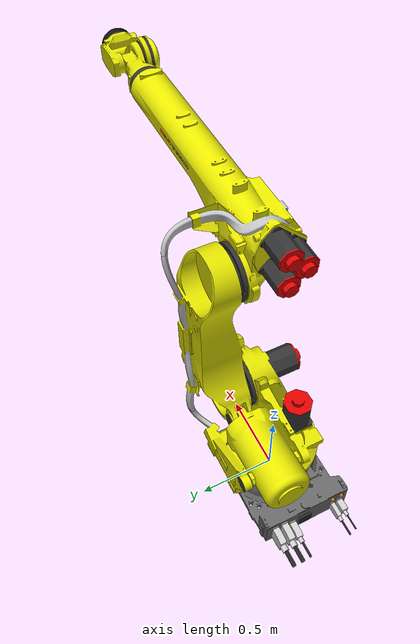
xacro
<?xml version="1.0" ?>
<robot name="r2000ic_210l" xmlns:xacro="http://wiki.ros.org/xacro">
  <xacro:include
    filename="$(find fanuc_r2000_description)/urdf/r2000ic_210l_urdf_macro.xacro"
  />

  <link name="world" />
  <link name="ee_link" />
  <xacro:r2000ic_210l parent="world" child="ee_link">
    <origin xyz="0 0 0" rpy="0 0 0" />
  </xacro:r2000ic_210l>
</robot>

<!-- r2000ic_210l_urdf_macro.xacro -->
<!--
SPDX-FileCopyrightText: 2026, FANUC America Corporation
SPDX-FileCopyrightText: 2026, FANUC CORPORATION
SPDX-License-Identifier: Apache-2.0
-->
<!-- URDF for R-2000/210F-31C(R-2000iC/210L) -->
<robot xmlns:xacro="http://wiki.ros.org/xacro">
  <xacro:macro
    name="r2000ic_210l"
    params="prefix=''
            parent
            *origin
            child"
  >

    <xacro:property name="j1_lower_limit" value="${radians(-185)}" />
    <xacro:property name="j2_lower_limit" value="${radians(-60)}" />
    <xacro:property name="j3_lower_limit" value="${radians(-79)}" />
    <xacro:property name="j4_lower_limit" value="${radians(-360)}" />
    <xacro:property name="j5_lower_limit" value="${radians(-125)}" />
    <xacro:property name="j6_lower_limit" value="${radians(-360)}" />

    <xacro:property name="j1_upper_limit" value="${radians(185)}" />
    <xacro:property name="j2_upper_limit" value="${radians(76)}" />
    <xacro:property name="j3_upper_limit" value="${radians(180)}" />
    <xacro:property name="j4_upper_limit" value="${radians(360)}" />
    <xacro:property name="j5_upper_limit" value="${radians(125)}" />
    <xacro:property name="j6_upper_limit" value="${radians(360)}" />

    <xacro:property name="j1_effort_limit" value="20000" />
    <xacro:property name="j2_effort_limit" value="30000" />
    <xacro:property name="j3_effort_limit" value="30000" />
    <xacro:property name="j4_effort_limit" value="6000" />
    <xacro:property name="j5_effort_limit" value="6000" />
    <xacro:property name="j6_effort_limit" value="3000" />

    <xacro:property name="j1_velocity_limit" value="${radians(105)}" />
    <xacro:property name="j2_velocity_limit" value="${radians(85)}" />
    <xacro:property name="j3_velocity_limit" value="${radians(85)}" />
    <xacro:property name="j4_velocity_limit" value="${radians(120)}" />
    <xacro:property name="j5_velocity_limit" value="${radians(120)}" />
    <xacro:property name="j6_velocity_limit" value="${radians(200)}" />

    <!-- links -->
    <link name="${prefix}base_link">
      <visual>
        <origin xyz="0 0 0" rpy="0 0 0" />
        <geometry>
          <mesh
            filename="package://fanuc_r2000_description/meshes/r2000ic_210l/visual/base.dae"
          />
        </geometry>
      </visual>
      <collision>
        <origin xyz="0 0 0" rpy="0 0 0" />
        <geometry>
          <mesh
            filename="package://fanuc_r2000_description/meshes/r2000ic_210l/collision/base.stl"
          />
        </geometry>
      </collision>
      <inertial>
        <mass value=" 219" />
        <origin xyz="-.137 -.00069  .142" />
        <inertia
          ixx=" 7.52"
          ixy=" .201"
          ixz="-.32"
          iyy=" 15.7"
          iyz=" .0156"
          izz=" 19.8"
        />
      </inertial>
    </link>

    <link name="${prefix}J1_link">
      <visual>
        <origin xyz="0 0 0" rpy="0 0 0" />
        <geometry>
          <mesh
            filename="package://fanuc_r2000_description/meshes/r2000ic_210l/visual/j1.dae"
          />
        </geometry>
      </visual>
      <collision>
        <origin xyz="0 0 0" rpy="0 0 0" />
        <geometry>
          <mesh
            filename="package://fanuc_r2000_description/meshes/r2000ic_210l/collision/j1.stl"
          />
        </geometry>
      </collision>
      <inertial>
        <mass value=" 401" />
        <origin xyz=" .0199  .064 -.114" />
        <inertia
          ixx=" 22.2"
          ixy=" 4.04"
          ixz="-.72"
          iyy=" 31.7"
          iyz="-.901"
          izz=" 36.3"
        />
      </inertial>
    </link>

    <link name="${prefix}J2_link">
      <visual>
        <origin xyz="0 0 0" rpy="0 0 0" />
        <geometry>
          <mesh
            filename="package://fanuc_r2000_description/meshes/r2000ic_210l/visual/j2.dae"
          />
        </geometry>
      </visual>
      <collision>
        <origin xyz="0 0 0" rpy="0 0 0" />
        <geometry>
          <mesh
            filename="package://fanuc_r2000_description/meshes/r2000ic_210l/collision/j2.stl"
          />
        </geometry>
      </collision>
      <inertial>
        <mass value=" 270" />
        <origin xyz=" .00363  .259  .488" />
        <inertia
          ixx=" 41.2"
          ixy="-.0643"
          ixz="-1.15"
          iyy=" 42"
          iyz="-2.66"
          izz=" 6.39"
        />
      </inertial>
    </link>

    <link name="${prefix}J3_link">
      <visual>
        <origin xyz="0 0 0" rpy="0 0 0" />
        <geometry>
          <mesh
            filename="package://fanuc_r2000_description/meshes/r2000ic_210l/visual/j3.dae"
          />
        </geometry>
      </visual>
      <collision>
        <origin xyz="0 0 0" rpy="0 0 0" />
        <geometry>
          <mesh
            filename="package://fanuc_r2000_description/meshes/r2000ic_210l/collision/j3.stl"
          />
        </geometry>
      </collision>
      <inertial>
        <mass value=" 421" />
        <origin xyz=" .407  .0598  .156" />
        <inertia
          ixx=" 14.4"
          ixy=" 1.69"
          ixz="-4.56"
          iyy=" 83.6"
          iyz="-.152"
          izz=" 84.9"
        />
      </inertial>
    </link>

    <link name="${prefix}J4_link">
      <visual>
        <origin xyz="0 0 0" rpy="0 0 0" />
        <geometry>
          <mesh
            filename="package://fanuc_r2000_description/meshes/r2000ic_210l/visual/j4.dae"
          />
        </geometry>
      </visual>
      <collision>
        <origin xyz="0 0 0" rpy="0 0 0" />
        <geometry>
          <mesh
            filename="package://fanuc_r2000_description/meshes/r2000ic_210l/collision/j4.stl"
          />
        </geometry>
      </collision>
      <inertial>
        <mass value=" 13.8" />
        <origin xyz=" 1.61 -.00981  .00000000149" />
        <inertia
          ixx=" .0676"
          ixy=" .00973"
          ixz=" .00000000287"
          iyy=" .161"
          iyz=" .00000000154"
          izz=" .156"
        />
      </inertial>
    </link>

    <link name="${prefix}J5_link">
      <visual>
        <origin xyz="0 0 0" rpy="0 0 0" />
        <geometry>
          <mesh
            filename="package://fanuc_r2000_description/meshes/r2000ic_210l/visual/j5.dae"
          />
        </geometry>
      </visual>
      <collision>
        <origin xyz="0 0 0" rpy="0 0 0" />
        <geometry>
          <mesh
            filename="package://fanuc_r2000_description/meshes/r2000ic_210l/collision/j5.stl"
          />
        </geometry>
      </collision>
      <inertial>
        <mass value=" 24.1" />
        <origin xyz=" .0522 -.024 -.0000000449" />
        <inertia
          ixx=" .229"
          ixy="-.0348"
          ixz=" .000000111"
          iyy=" .251"
          iyz="-.000000121"
          izz=" .325"
        />
      </inertial>
    </link>

    <link name="${prefix}J6_link">
      <visual>
        <origin xyz="0 0 0" rpy="0 0 0" />
        <geometry>
          <mesh
            filename="package://fanuc_r2000_description/meshes/r2000ic_210l/visual/j6.dae"
          />
        </geometry>
      </visual>
      <collision>
        <origin xyz="0 0 0" rpy="0 0 0" />
        <geometry>
          <mesh
            filename="package://fanuc_r2000_description/meshes/r2000ic_210l/collision/j6.stl"
          />
        </geometry>
      </collision>
      <inertial>
        <mass value=" 1.71" />
        <origin xyz=" .221  .000000432  .0000159" />
        <inertia
          ixx=" .00799"
          ixy="-.00000000481"
          ixz=" .000000213"
          iyy=" .00421"
          iyz=" .000000421"
          izz=" .00422"
        />
      </inertial>
    </link>

    <!-- joints -->
    <joint name="${prefix}J1" type="revolute">
      <origin xyz=" 0  0  .67" rpy="0 0 0" />
      <parent link="${prefix}base_link" />
      <child link="${prefix}J1_link" />
      <axis xyz=" 0  0  1" />
      <limit
        lower="${j1_lower_limit}"
        upper="${j1_upper_limit}"
        effort="${j1_effort_limit}"
        velocity="${j1_velocity_limit}"
      />
    </joint>

    <joint name="${prefix}J2" type="revolute">
      <origin xyz=" .312  0  0" rpy="0 0 0" />
      <parent link="${prefix}J1_link" />
      <child link="${prefix}J2_link" />
      <axis xyz=" 0  1  0" />
      <limit
        lower="${j2_lower_limit}"
        upper="${j2_upper_limit}"
        effort="${j2_effort_limit}"
        velocity="${j2_velocity_limit}"
      />
    </joint>

    <joint name="${prefix}J3" type="revolute">
      <origin xyz=" 0  0  1.075" rpy="0 0 0" />
      <parent link="${prefix}J2_link" />
      <child link="${prefix}J3_link" />
      <axis xyz=" 0 -1  0" />
      <limit
        lower="${j3_lower_limit}"
        upper="${j3_upper_limit}"
        effort="${j3_effort_limit}"
        velocity="${j3_velocity_limit}"
      />
    </joint>

    <joint name="${prefix}J4" type="revolute">
      <origin xyz=" 0  0  .225" rpy="0 0 0" />
      <parent link="${prefix}J3_link" />
      <child link="${prefix}J4_link" />
      <axis xyz="-1  0  0" />
      <limit
        lower="${j4_lower_limit}"
        upper="${j4_upper_limit}"
        effort="${j4_effort_limit}"
        velocity="${j4_velocity_limit}"
      />
    </joint>

    <joint name="${prefix}J5" type="revolute">
      <origin xyz=" 1.73  0  0" rpy="0 0 0" />
      <parent link="${prefix}J4_link" />
      <child link="${prefix}J5_link" />
      <axis xyz=" 0 -1  0" />
      <limit
        lower="${j5_lower_limit}"
        upper="${j5_upper_limit}"
        effort="${j5_effort_limit}"
        velocity="${j5_velocity_limit}"
      />
    </joint>

    <joint name="${prefix}J6" type="revolute">
      <origin xyz=" 0  0  0" rpy="0 0 0" />
      <parent link="${prefix}J5_link" />
      <child link="${prefix}J6_link" />
      <axis xyz="-1  0  0" />
      <limit
        lower="${j6_lower_limit}"
        upper="${j6_upper_limit}"
        effort="${j6_effort_limit}"
        velocity="${j6_velocity_limit}"
      />
    </joint>

    <!-- world coords -->
    <link name="${prefix}wbase" />
    <joint name="${prefix}base_link-wbase" type="fixed">
      <origin xyz=" 0  0  .67" rpy="0 0 0" />
      <parent link="${prefix}base_link" />
      <child link="${prefix}wbase" />
    </joint>

    <!-- flange coords -->
    <link name="${prefix}flange" />
    <joint name="${prefix}J6-flange" type="fixed">
      <origin xyz=" .24  0  0" rpy="0 0 0" />
      <parent link="${prefix}J6_link" />
      <child link="${prefix}flange" />
    </joint>

    <!-- FANUC flange coords -->
    <link name="${prefix}fanuc_flange" />
    <joint name="${prefix}flange-fanuc_flange" type="fixed">
      <origin xyz="0 0 0" rpy="${radians( 180)} ${radians(-90)} ${radians( 0)}" />
      <parent link="${prefix}flange" />
      <child link="${prefix}fanuc_flange" />
    </joint>

    <!-- Attach to parent -->
    <joint name="${prefix}base_joint" type="fixed">
      <xacro:insert_block name="origin" />
      <parent link="${parent}" />
      <child link="${prefix}base_link" />
    </joint>

    <!-- Attach child -->
    <joint name="${prefix}child_joint" type="fixed">
      <origin xyz="0 0 0" rpy="0 0 0" />
      <parent link="${prefix}flange" />
      <child link="${child}" />
    </joint>
  </xacro:macro>
</robot>
